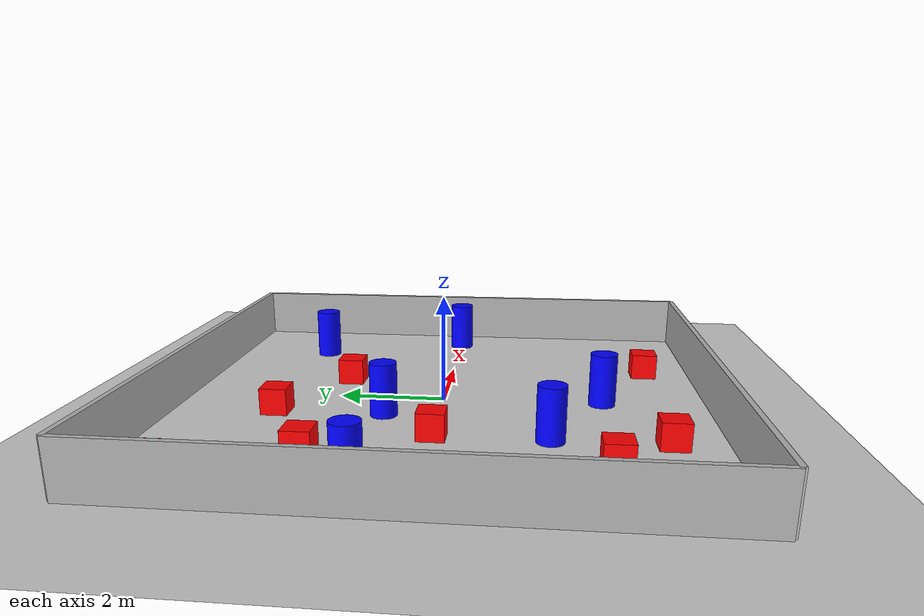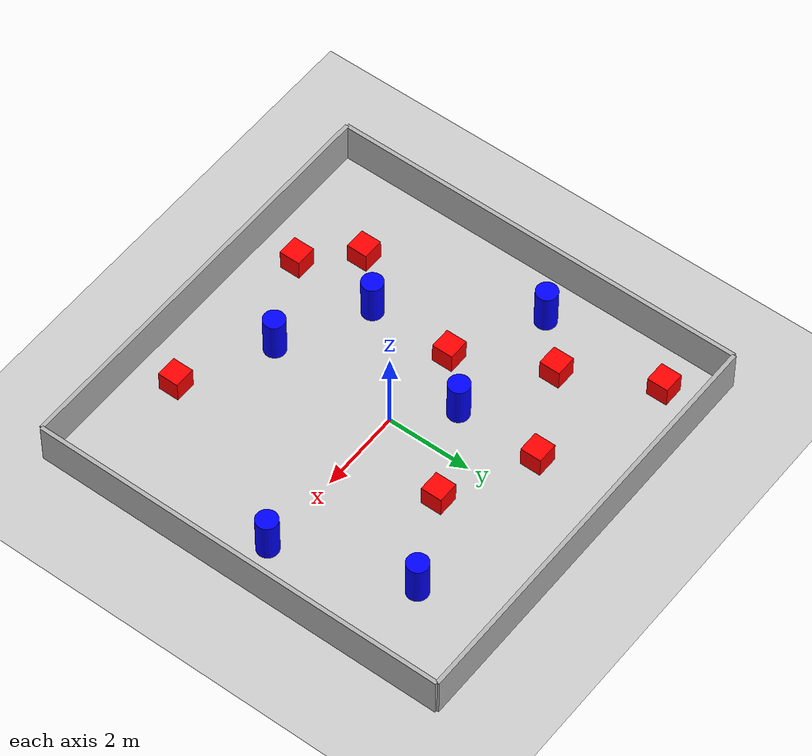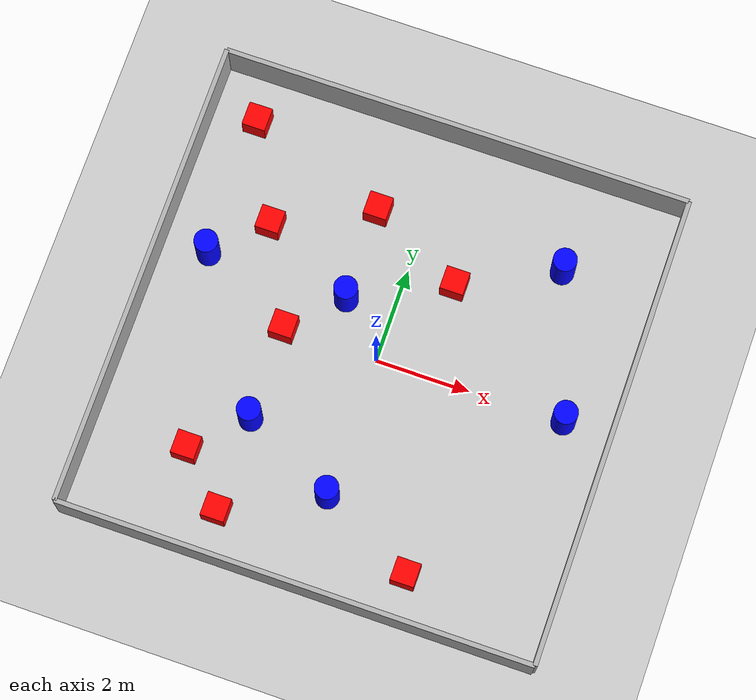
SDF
<?xml version="1.0"?>
<sdf version="1.6">
  <world name="warehouse">

    <plugin filename="gz-sim-physics-system"
            name="gz::sim::systems::Physics"/>
    <plugin filename="gz-sim-scene-broadcaster-system"
            name="gz::sim::systems::SceneBroadcaster"/>
    <plugin filename="gz-sim-user-commands-system"
            name="gz::sim::systems::UserCommands"/>
    <plugin filename="gz-sim-sensors-system"
            name="gz::sim::systems::Sensors">
      <render_engine>ogre2</render_engine>
    </plugin>

    <!--lighting-->
    <light type="directional" name="sun">
      <cast_shadows>false</cast_shadows>
      <pose>0 0 10 0 0 0</pose>
      <diffuse>1.0 1.0 1.0 1</diffuse>
      <specular>0.5 0.5 0.5 1</specular>
      <direction>0 0 -1</direction>
      <attenuation>
        <range>1000</range>
        <constant>0.9</constant>
        <linear>0.01</linear>
        <quadratic>0.001</quadratic>
      </attenuation>
    </light>

    <!--ground_plane-->
    <model name="ground_plane">
      <static>true</static>
      <link name="link">
        <collision name="collision">
          <geometry>
            <plane>
              <normal>0 0 1</normal>
            </plane>
          </geometry>
        </collision>
        <visual name="visual">
          <geometry>
            <plane>
              <normal>0 0 1</normal>
              <size>20 20</size>
            </plane>
          </geometry>
          <material>
            <ambient>0.8 0.8 0.8 1</ambient>
            <diffuse>0.8 0.8 0.8 1</diffuse>
            <specular>0.8 0.8 0.8 1</specular>
          </material>
        </visual>
      </link>
    </model>

    <!--North_Wall-->
    <model name="north_wall">
      <static>true</static>
      <pose>0 5 0.5 0 0 0</pose>
      <link name="link">
        <collision name="collision">
          <geometry>
            <box>
              <size>10 0.1 1</size>
            </box>
          </geometry>
        </collision>
        <visual name="visual">
          <geometry>
            <box>
              <size>10 0.1 1</size>
            </box>
          </geometry>
          <material>
            <ambient>0.7 0.7 0.7 1</ambient>
            <diffuse>0.7 0.7 0.7 1</diffuse>
          </material>
        </visual>
      </link>
    </model>

    <!--South_wall-->
    <model name="south_wall">
      <static>true</static>
      <pose>0 -5 0.5 0 0 0</pose>
      <link name="link">
        <collision name="collision">
          <geometry>
            <box>
              <size>10 0.1 1</size>
            </box>
          </geometry>
        </collision>
        <visual name="visual">
          <geometry>
            <box>
              <size>10 0.1 1</size>
            </box>
          </geometry>
          <material>
            <ambient>0.7 0.7 0.7 1</ambient>
            <diffuse>0.7 0.7 0.7 1</diffuse>
          </material>
        </visual>
      </link>
    </model>

    <!--East_wall-->
    <model name="east_wall">
      <static>true</static>
      <pose>5 0 0.5 0 0 0</pose>
      <link name="link">
        <collision name="collision">
          <geometry>
            <box>
              <size>0.1 10 1</size>
            </box>
          </geometry>
        </collision>
        <visual name="visual">
          <geometry>
            <box>
              <size>0.1 10 1</size>
            </box>
          </geometry>
          <material>
            <ambient>0.7 0.7 0.7 1</ambient>
            <diffuse>0.7 0.7 0.7 1</diffuse>
          </material>
        </visual>
      </link>
    </model>

    <!--West_wall-->
    <model name="west_wall">
      <static>true</static>
      <pose>-5 0 0.5 0 0 0</pose>
      <link name="link">
        <collision name="collision">
          <geometry>
            <box>
              <size>0.1 10 1</size>
            </box>
          </geometry>
        </collision>
        <visual name="visual">
          <geometry>
            <box>
              <size>0.1 10 1</size>
            </box>
          </geometry>
          <material>
            <ambient>0.7 0.7 0.7 1</ambient>
            <diffuse>0.7 0.7 0.7 1</diffuse>
          </material>
        </visual>
      </link>
    </model>

        <!--Red_BBox_2-->
    <model name="red_box_2">
      <static>true</static>
      <pose>-2 0 0.25 0 0 0</pose>
      <link name="link">
        <visual name="visual">
          <geometry>
            <box>
              <size>0.5 0.5 0.5</size>
            </box>
          </geometry>
          <material>
            <ambient>1 0 0 1</ambient>
            <diffuse>1 0 0 1</diffuse>
          </material>
        </visual>
        <collision name="collision">
          <geometry>
            <box>
              <size>0.5 0.5 0.5</size>
            </box>
          </geometry>
        </collision>
      </link>
    </model>

        <!--Red_BBox_3-->
    <model name="red_box_3">
      <static>true</static>
      <pose>-1 3 0.25 0 0 0</pose>
      <link name="link">
        <visual name="visual">
          <geometry>
            <box>
              <size>0.5 0.5 0.5</size>
            </box>
          </geometry>
          <material>
            <ambient>1 0 0 1</ambient>
            <diffuse>1 0 0 1</diffuse>
          </material>
        </visual>
        <collision name="collision">
          <geometry>
            <box>
              <size>0.5 0.5 0.5</size>
            </box>
          </geometry>
        </collision>
      </link>
    </model>

        <!--Red_BBox_4-->
    <model name="red_box_4">
      <static>true</static>
      <pose>-4 4 0.25 0 0 0</pose>
      <link name="link">
        <visual name="visual">
          <geometry>
            <box>
              <size>0.5 0.5 0.5</size>
            </box>
          </geometry>
          <material>
            <ambient>1 0 0 1</ambient>
            <diffuse>1 0 0 1</diffuse>
          </material>
        </visual>
        <collision name="collision">
          <geometry>
            <box>
              <size>0.5 0.5 0.5</size>
            </box>
          </geometry>
        </collision>
      </link>
    </model>

        <!--Red_BBox_6-->
    <model name="red_box_6">
      <static>true</static>
      <pose>-3 -3 0.25 0 0 0</pose>
      <link name="link">
        <visual name="visual">
          <geometry>
            <box>
              <size>0.5 0.5 0.5</size>
            </box>
          </geometry>
          <material>
            <ambient>1 0 0 1</ambient>
            <diffuse>1 0 0 1</diffuse>
          </material>
        </visual>
        <collision name="collision">
          <geometry>
            <box>
              <size>0.5 0.5 0.5</size>
            </box>
          </geometry>
        </collision>
      </link>
    </model>

        <!--Red_BBox_7-->
    <model name="red_box_7">
      <static>true</static>
      <pose>-3 2 0.25 0 0 0</pose>
      <link name="link">
        <visual name="visual">
          <geometry>
            <box>
              <size>0.5 0.5 0.5</size>
            </box>
          </geometry>
          <material>
            <ambient>1 0 0 1</ambient>
            <diffuse>1 0 0 1</diffuse>
          </material>
        </visual>
        <collision name="collision">
          <geometry>
            <box>
              <size>0.5 0.5 0.5</size>
            </box>
          </geometry>
        </collision>
      </link>
    </model>

            <!--Red_BBox_8-->
    <model name="red_box_8">
      <static>true</static>
      <pose>-2 -4 0.25 0 0 0</pose>
      <link name="link">
        <visual name="visual">
          <geometry>
            <box>
              <size>0.5 0.5 0.5</size>
            </box>
          </geometry>
          <material>
            <ambient>1 0 0 1</ambient>
            <diffuse>1 0 0 1</diffuse>
          </material>
        </visual>
        <collision name="collision">
          <geometry>
            <box>
              <size>0.5 0.5 0.5</size>
            </box>
          </geometry>
        </collision>
      </link>
    </model>

            <!--Red_BBox_9-->
    <model name="red_box_9">
      <static>true</static>
      <pose>2 -4 0.25 0 0 0</pose>
      <link name="link">
        <visual name="visual">
          <geometry>
            <box>
              <size>0.5 0.5 0.5</size>
            </box>
          </geometry>
          <material>
            <ambient>1 0 0 1</ambient>
            <diffuse>1 0 0 1</diffuse>
          </material>
        </visual>
        <collision name="collision">
          <geometry>
            <box>
              <size>0.5 0.5 0.5</size>
            </box>
          </geometry>
        </collision>
      </link>
    </model>

            <!--Red_BBox_10-->

            <!--Red_BBox_11-->
    <model name="red_box_11">
      <static>true</static>
      <pose>1 2 0.25 0 0 0</pose>
      <link name="link">
        <visual name="visual">
          <geometry>
            <box>
              <size>0.5 0.5 0.5</size>
            </box>
          </geometry>
          <material>
            <ambient>1 0 0 1</ambient>
            <diffuse>1 0 0 1</diffuse>
          </material>
        </visual>
        <collision name="collision">
          <geometry>
            <box>
              <size>0.5 0.5 0.5</size>
            </box>
          </geometry>
        </collision>
      </link>
    </model>

    <!--Blue_cylinder_1-->
    <model name="blue_cylinder_1">
      <static>true</static>
      <pose>-2 -2 0.5 0 0 0</pose>
      <link name="link">
        <visual name="visual">
          <geometry>
            <cylinder>
              <radius>0.25</radius>
              <length>1</length>
            </cylinder>
          </geometry>
          <material>
            <ambient>0 0 1 1</ambient>
            <diffuse>0 0 1 1</diffuse>
          </material>
        </visual>
        <collision name="collision">
          <geometry>
            <cylinder>
              <radius>0.25</radius>
              <length>1</length>
            </cylinder>
          </geometry>
        </collision>
      </link>
    </model>

    <!--Blue_cylinder_2-->
    <model name="blue_cylinder_2">
      <static>true</static>
      <pose>-1 1 0.5 0 0 0</pose>
      <link name="link">
        <visual name="visual">
          <geometry>
            <cylinder>
              <radius>0.25</radius>
              <length>1</length>
            </cylinder>
          </geometry>
          <material>
            <ambient>0 0 1 1</ambient>
            <diffuse>0 0 1 1</diffuse>
          </material>
        </visual>
        <collision name="collision">
          <geometry>
            <cylinder>
              <radius>0.25</radius>
              <length>1</length>
            </cylinder>
          </geometry>
        </collision>
      </link>
    </model>

<!--Blue_cylinder_3-->
    <model name="blue_cylinder_3">
      <static>true</static>
      <pose>0 -3 0.5 0 0 0</pose>
      <link name="link">
        <visual name="visual">
          <geometry>
            <cylinder>
              <radius>0.25</radius>
              <length>1</length>
            </cylinder>
          </geometry>
          <material>
            <ambient>0 0 1 1</ambient>
            <diffuse>0 0 1 1</diffuse>
          </material>
        </visual>
        <collision name="collision">
          <geometry>
            <cylinder>
              <radius>0.25</radius>
              <length>1</length>
            </cylinder>
          </geometry>
        </collision>
      </link>
    </model>

<!--Blue_cylinder_4-->
    <model name="blue_cylinder_4">
      <static>true</static>
      <pose>3 3 0.5 0 0 0</pose>
      <link name="link">
        <visual name="visual">
          <geometry>
            <cylinder>
              <radius>0.25</radius>
              <length>1</length>
            </cylinder>
          </geometry>
          <material>
            <ambient>0 0 1 1</ambient>
            <diffuse>0 0 1 1</diffuse>
          </material>
        </visual>
        <collision name="collision">
          <geometry>
            <cylinder>
              <radius>0.25</radius>
              <length>1</length>
            </cylinder>
          </geometry>
        </collision>
      </link>
    </model>
<!--Blue_cylinder_5-->
    <model name="blue_cylinder_5">
      <static>true</static>
      <pose>4 0 0.5 0 0 0</pose>
      <link name="link">
        <visual name="visual">
          <geometry>
            <cylinder>
              <radius>0.25</radius>
              <length>1</length>
            </cylinder>
          </geometry>
          <material>
            <ambient>0 0 1 1</ambient>
            <diffuse>0 0 1 1</diffuse>
          </material>
        </visual>
        <collision name="collision">
          <geometry>
            <cylinder>
              <radius>0.25</radius>
              <length>1</length>
            </cylinder>
          </geometry>
        </collision>
      </link>
    </model>

<!--Blue_cylinder_6-->
    <model name="blue_cylinder_6">
      <static>true</static>
      <pose>-4 1 0.5 0 0 0</pose>
      <link name="link">
        <visual name="visual">
          <geometry>
            <cylinder>
              <radius>0.25</radius>
              <length>1</length>
            </cylinder>
          </geometry>
          <material>
            <ambient>0 0 1 1</ambient>
            <diffuse>0 0 1 1</diffuse>
          </material>
        </visual>
        <collision name="collision">
          <geometry>
            <cylinder>
              <radius>0.25</radius>
              <length>1</length>
            </cylinder>
          </geometry>
        </collision>
      </link>
    </model>
  </world>
</sdf>
